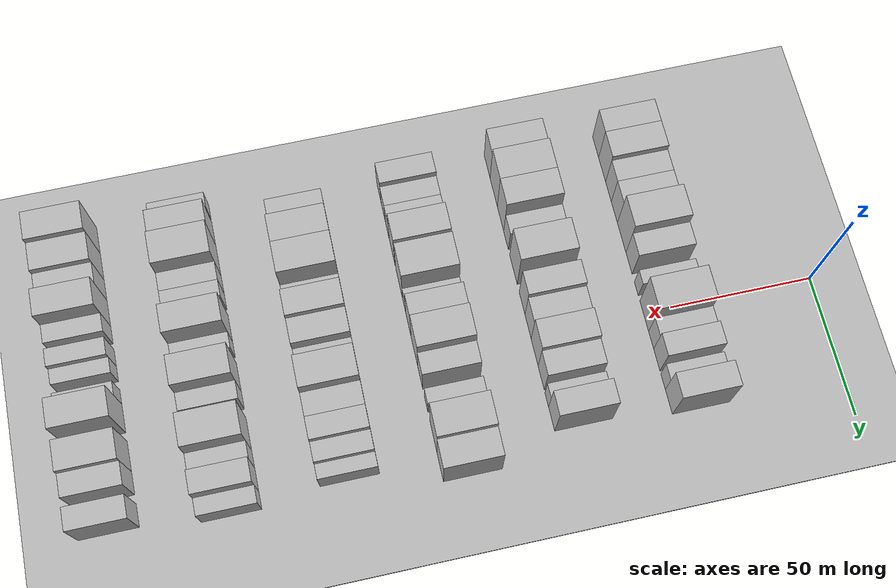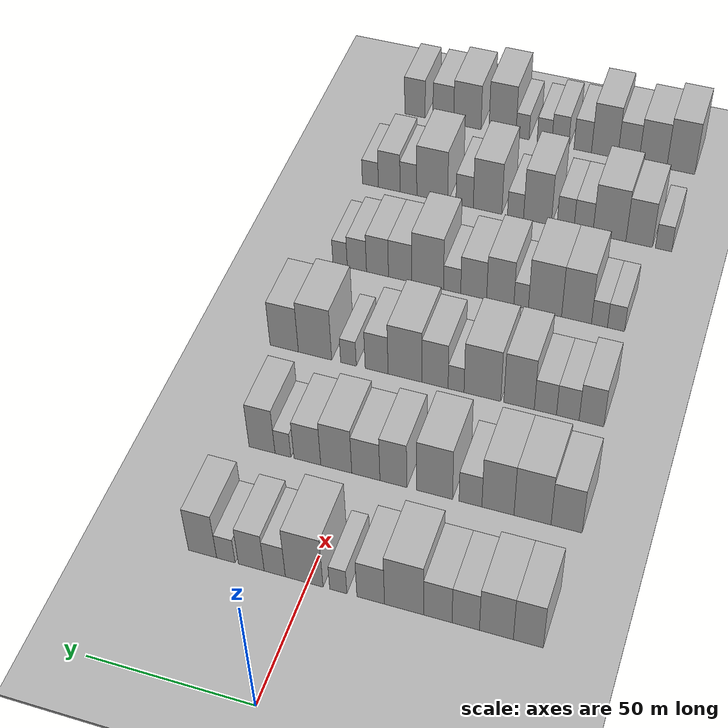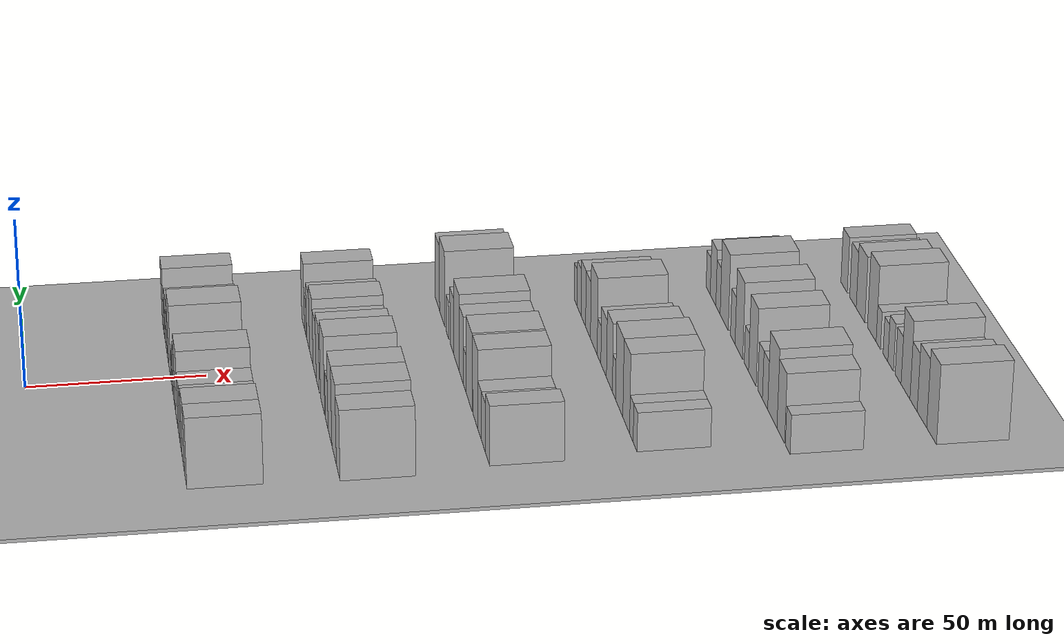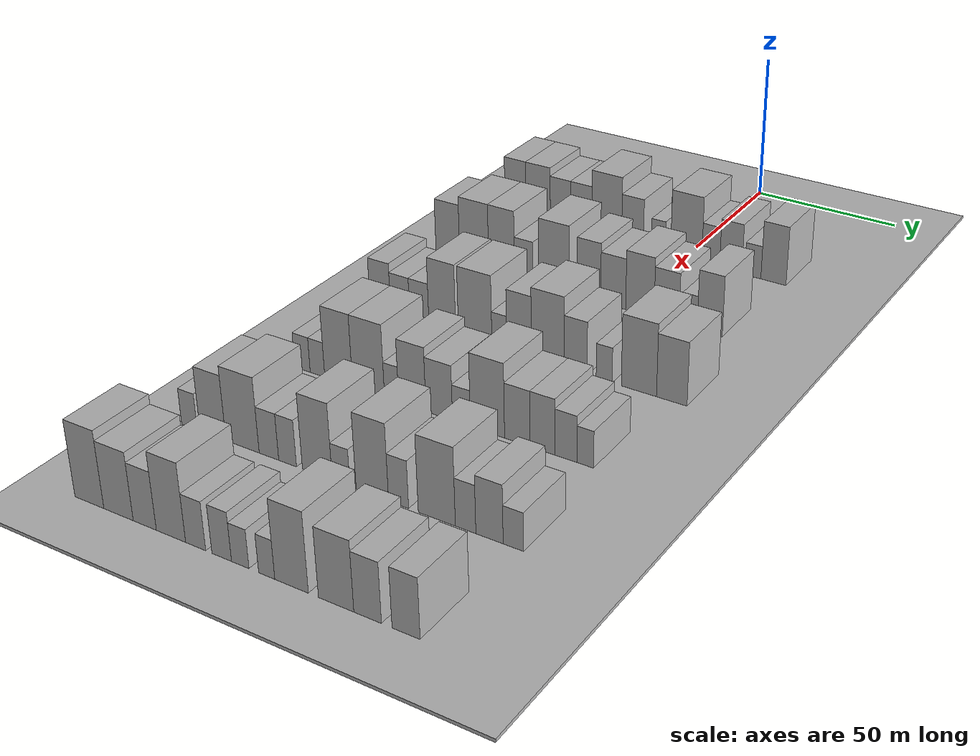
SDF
<sdf version="1.6">
 <world name="default">
  <include><name>ground_plane_1</name><uri>model://HANNAS_ground_plane</uri></include>
  <include>
   <name>ground_plane_2</name>
   <uri>model://HANNAS_ground_plane</uri>
   <pose>100 0 0  0 0 0</pose>
  </include>
  <model name="building_61">
   <static>1</static>
   <pose>50.0000 -64.9273 0 0.000000 0.000000 0.000000</pose>
   <link name="link">
    <pose>0 0 10.50 0 0 0</pose>
    <collision name="collision"><geometry><box><size>20.0000 8.5586 21.0000</size></box></geometry></collision>
    <visual name="visual">
     <cast_shadows>0</cast_shadows>
     <geometry><box><size>20.0000 8.5586 21.0000</size></box></geometry>
     <material>
      <script>
       <uri>model://HANNAS_wall/materials/scripts</uri>
       <uri>model://HANNAS_wall/materials/textures</uri>
       <name>vrc/HANNAS_wall</name>
      </script>
     </material>
    </visual>
   </link>
  </model>
  <model name="building_62">
   <static>1</static>
   <pose>50.0000 -55.7597 0 0.000000 0.000000 0.000000</pose>
   <link name="link">
    <pose>0 0 10.50 0 0 0</pose>
    <collision name="collision"><geometry><box><size>20.0000 9.7767 21.0000</size></box></geometry></collision>
    <visual name="visual">
     <cast_shadows>0</cast_shadows>
     <geometry><box><size>20.0000 9.7767 21.0000</size></box></geometry>
     <material>
      <script>
       <uri>model://HANNAS_wall/materials/scripts</uri>
       <uri>model://HANNAS_wall/materials/textures</uri>
       <name>vrc/HANNAS_wall</name>
      </script>
     </material>
    </visual>
   </link>
  </model>
  <model name="building_63">
   <static>1</static>
   <pose>50.0000 -46.8969 0 0.000000 0.000000 0.000000</pose>
   <link name="link">
    <pose>0 0 9.00 0 0 0</pose>
    <collision name="collision"><geometry><box><size>20.0000 7.9490 18.0000</size></box></geometry></collision>
    <visual name="visual">
     <cast_shadows>0</cast_shadows>
     <geometry><box><size>20.0000 7.9490 18.0000</size></box></geometry>
     <material>
      <script>
       <uri>model://HANNAS_wall/materials/scripts</uri>
       <uri>model://HANNAS_wall/materials/textures</uri>
       <name>vrc/HANNAS_wall</name>
      </script>
     </material>
    </visual>
   </link>
  </model>
  <model name="building_64">
   <static>1</static>
   <pose>50.0000 -38.7612 0 0.000000 0.000000 0.000000</pose>
   <link name="link">
    <pose>0 0 9.00 0 0 0</pose>
    <collision name="collision"><geometry><box><size>20.0000 8.3224 18.0000</size></box></geometry></collision>
    <visual name="visual">
     <cast_shadows>0</cast_shadows>
     <geometry><box><size>20.0000 8.3224 18.0000</size></box></geometry>
     <material>
      <script>
       <uri>model://HANNAS_wall/materials/scripts</uri>
       <uri>model://HANNAS_wall/materials/textures</uri>
       <name>vrc/HANNAS_wall</name>
      </script>
     </material>
    </visual>
   </link>
  </model>
  <model name="building_65">
   <static>1</static>
   <pose>50.0000 -28.8461 0 0.000000 0.000000 0.000000</pose>
   <link name="link">
    <pose>0 0 12.00 0 0 0</pose>
    <collision name="collision"><geometry><box><size>20.0000 11.5079 24.0000</size></box></geometry></collision>
    <visual name="visual">
     <cast_shadows>0</cast_shadows>
     <geometry><box><size>20.0000 11.5079 24.0000</size></box></geometry>
     <material>
      <script>
       <uri>model://HANNAS_wall/materials/scripts</uri>
       <uri>model://HANNAS_wall/materials/textures</uri>
       <name>vrc/HANNAS_wall</name>
      </script>
     </material>
    </visual>
   </link>
  </model>
  <model name="building_66">
   <static>1</static>
   <pose>50.0000 -18.9739 0 0.000000 0.000000 0.000000</pose>
   <link name="link">
    <pose>0 0 9.00 0 0 0</pose>
    <collision name="collision"><geometry><box><size>20.0000 8.2365 18.0000</size></box></geometry></collision>
    <visual name="visual">
     <cast_shadows>0</cast_shadows>
     <geometry><box><size>20.0000 8.2365 18.0000</size></box></geometry>
     <material>
      <script>
       <uri>model://HANNAS_wall/materials/scripts</uri>
       <uri>model://HANNAS_wall/materials/textures</uri>
       <name>vrc/HANNAS_wall</name>
      </script>
     </material>
    </visual>
   </link>
  </model>
  <model name="building_67">
   <static>1</static>
   <pose>50.0000 -9.2763 0 0.000000 0.000000 0.000000</pose>
   <link name="link">
    <pose>0 0 6.00 0 0 0</pose>
    <collision name="collision"><geometry><box><size>20.0000 5.1587 12.0000</size></box></geometry></collision>
    <visual name="visual">
     <cast_shadows>0</cast_shadows>
     <geometry><box><size>20.0000 5.1587 12.0000</size></box></geometry>
     <material>
      <script>
       <uri>model://HANNAS_wall/materials/scripts</uri>
       <uri>model://HANNAS_wall/materials/textures</uri>
       <name>vrc/HANNAS_wall</name>
      </script>
     </material>
    </visual>
   </link>
  </model>
  <model name="building_68">
   <static>1</static>
   <pose>50.0000 1.0215 0 0.000000 0.000000 0.000000</pose>
   <link name="link">
    <pose>0 0 12.00 0 0 0</pose>
    <collision name="collision"><geometry><box><size>20.0000 11.4368 24.0000</size></box></geometry></collision>
    <visual name="visual">
     <cast_shadows>0</cast_shadows>
     <geometry><box><size>20.0000 11.4368 24.0000</size></box></geometry>
     <material>
      <script>
       <uri>model://HANNAS_wall/materials/scripts</uri>
       <uri>model://HANNAS_wall/materials/textures</uri>
       <name>vrc/HANNAS_wall</name>
      </script>
     </material>
    </visual>
   </link>
  </model>
  <model name="building_69">
   <static>1</static>
   <pose>50.0000 9.9704 0 0.000000 0.000000 0.000000</pose>
   <link name="link">
    <pose>0 0 7.50 0 0 0</pose>
    <collision name="collision"><geometry><box><size>20.0000 6.4611 15.0000</size></box></geometry></collision>
    <visual name="visual">
     <cast_shadows>0</cast_shadows>
     <geometry><box><size>20.0000 6.4611 15.0000</size></box></geometry>
     <material>
      <script>
       <uri>model://HANNAS_wall/materials/scripts</uri>
       <uri>model://HANNAS_wall/materials/textures</uri>
       <name>vrc/HANNAS_wall</name>
      </script>
     </material>
    </visual>
   </link>
  </model>
  <model name="building_70">
   <static>1</static>
   <pose>50.0000 17.1751 0 0.000000 0.000000 0.000000</pose>
   <link name="link">
    <pose>0 0 9.00 0 0 0</pose>
    <collision name="collision"><geometry><box><size>20.0000 7.9483 18.0000</size></box></geometry></collision>
    <visual name="visual">
     <cast_shadows>0</cast_shadows>
     <geometry><box><size>20.0000 7.9483 18.0000</size></box></geometry>
     <material>
      <script>
       <uri>model://HANNAS_wall/materials/scripts</uri>
       <uri>model://HANNAS_wall/materials/textures</uri>
       <name>vrc/HANNAS_wall</name>
      </script>
     </material>
    </visual>
   </link>
  </model>
  <model name="building_71">
   <static>1</static>
   <pose>50.0000 25.0140 0 0.000000 0.000000 0.000000</pose>
   <link name="link">
    <pose>0 0 6.00 0 0 0</pose>
    <collision name="collision"><geometry><box><size>20.0000 5.7295 12.0000</size></box></geometry></collision>
    <visual name="visual">
     <cast_shadows>0</cast_shadows>
     <geometry><box><size>20.0000 5.7295 12.0000</size></box></geometry>
     <material>
      <script>
       <uri>model://HANNAS_wall/materials/scripts</uri>
       <uri>model://HANNAS_wall/materials/textures</uri>
       <name>vrc/HANNAS_wall</name>
      </script>
     </material>
    </visual>
   </link>
  </model>
  <model name="building_72">
   <static>1</static>
   <pose>50.0000 32.2604 0 0.000000 0.000000 0.000000</pose>
   <link name="link">
    <pose>0 0 10.50 0 0 0</pose>
    <collision name="collision"><geometry><box><size>20.0000 8.7634 21.0000</size></box></geometry></collision>
    <visual name="visual">
     <cast_shadows>0</cast_shadows>
     <geometry><box><size>20.0000 8.7634 21.0000</size></box></geometry>
     <material>
      <script>
       <uri>model://HANNAS_wall/materials/scripts</uri>
       <uri>model://HANNAS_wall/materials/textures</uri>
       <name>vrc/HANNAS_wall</name>
      </script>
     </material>
    </visual>
   </link>
  </model>
  <model name="building_191">
   <static>1</static>
   <pose>90.0000 -65.7509 0 0.000000 0.000000 0.000000</pose>
   <link name="link">
    <pose>0 0 10.50 0 0 0</pose>
    <collision name="collision"><geometry><box><size>20.0000 9.3643 21.0000</size></box></geometry></collision>
    <visual name="visual">
     <cast_shadows>0</cast_shadows>
     <geometry><box><size>20.0000 9.3643 21.0000</size></box></geometry>
     <material>
      <script>
       <uri>model://HANNAS_wall/materials/scripts</uri>
       <uri>model://HANNAS_wall/materials/textures</uri>
       <name>vrc/HANNAS_wall</name>
      </script>
     </material>
    </visual>
   </link>
  </model>
  <model name="building_192">
   <static>1</static>
   <pose>90.0000 -55.4507 0 0.000000 0.000000 0.000000</pose>
   <link name="link">
    <pose>0 0 12.00 0 0 0</pose>
    <collision name="collision"><geometry><box><size>20.0000 11.2360 24.0000</size></box></geometry></collision>
    <visual name="visual">
     <cast_shadows>0</cast_shadows>
     <geometry><box><size>20.0000 11.2360 24.0000</size></box></geometry>
     <material>
      <script>
       <uri>model://HANNAS_wall/materials/scripts</uri>
       <uri>model://HANNAS_wall/materials/textures</uri>
       <name>vrc/HANNAS_wall</name>
      </script>
     </material>
    </visual>
   </link>
  </model>
  <model name="building_193">
   <static>1</static>
   <pose>90.0000 -44.9226 0 0.000000 0.000000 0.000000</pose>
   <link name="link">
    <pose>0 0 12.00 0 0 0</pose>
    <collision name="collision"><geometry><box><size>20.0000 9.8203 24.0000</size></box></geometry></collision>
    <visual name="visual">
     <cast_shadows>0</cast_shadows>
     <geometry><box><size>20.0000 9.8203 24.0000</size></box></geometry>
     <material>
      <script>
       <uri>model://HANNAS_wall/materials/scripts</uri>
       <uri>model://HANNAS_wall/materials/textures</uri>
       <name>vrc/HANNAS_wall</name>
      </script>
     </material>
    </visual>
   </link>
  </model>
  <model name="building_194">
   <static>1</static>
   <pose>90.0000 -36.4990 0 0.000000 0.000000 0.000000</pose>
   <link name="link">
    <pose>0 0 7.50 0 0 0</pose>
    <collision name="collision"><geometry><box><size>20.0000 7.0270 15.0000</size></box></geometry></collision>
    <visual name="visual">
     <cast_shadows>0</cast_shadows>
     <geometry><box><size>20.0000 7.0270 15.0000</size></box></geometry>
     <material>
      <script>
       <uri>model://HANNAS_wall/materials/scripts</uri>
       <uri>model://HANNAS_wall/materials/textures</uri>
       <name>vrc/HANNAS_wall</name>
      </script>
     </material>
    </visual>
   </link>
  </model>
  <model name="building_195">
   <static>1</static>
   <pose>90.0000 -25.3706 0 0.000000 0.000000 0.000000</pose>
   <link name="link">
    <pose>0 0 12.00 0 0 0</pose>
    <collision name="collision"><geometry><box><size>20.0000 11.2297 24.0000</size></box></geometry></collision>
    <visual name="visual">
     <cast_shadows>0</cast_shadows>
     <geometry><box><size>20.0000 11.2297 24.0000</size></box></geometry>
     <material>
      <script>
       <uri>model://HANNAS_wall/materials/scripts</uri>
       <uri>model://HANNAS_wall/materials/textures</uri>
       <name>vrc/HANNAS_wall</name>
      </script>
     </material>
    </visual>
   </link>
  </model>
  <model name="building_196">
   <static>1</static>
   <pose>90.0000 -12.5158 0 0.000000 0.000000 0.000000</pose>
   <link name="link">
    <pose>0 0 10.50 0 0 0</pose>
    <collision name="collision"><geometry><box><size>20.0000 8.4800 21.0000</size></box></geometry></collision>
    <visual name="visual">
     <cast_shadows>0</cast_shadows>
     <geometry><box><size>20.0000 8.4800 21.0000</size></box></geometry>
     <material>
      <script>
       <uri>model://HANNAS_wall/materials/scripts</uri>
       <uri>model://HANNAS_wall/materials/textures</uri>
       <name>vrc/HANNAS_wall</name>
      </script>
     </material>
    </visual>
   </link>
  </model>
  <model name="building_197">
   <static>1</static>
   <pose>90.0000 -3.8164 0 0.000000 0.000000 0.000000</pose>
   <link name="link">
    <pose>0 0 9.00 0 0 0</pose>
    <collision name="collision"><geometry><box><size>20.0000 8.9188 18.0000</size></box></geometry></collision>
    <visual name="visual">
     <cast_shadows>0</cast_shadows>
     <geometry><box><size>20.0000 8.9188 18.0000</size></box></geometry>
     <material>
      <script>
       <uri>model://HANNAS_wall/materials/scripts</uri>
       <uri>model://HANNAS_wall/materials/textures</uri>
       <name>vrc/HANNAS_wall</name>
      </script>
     </material>
    </visual>
   </link>
  </model>
  <model name="building_198">
   <static>1</static>
   <pose>90.0000 5.6031 0 0.000000 0.000000 0.000000</pose>
   <link name="link">
    <pose>0 0 10.50 0 0 0</pose>
    <collision name="collision"><geometry><box><size>20.0000 9.9201 21.0000</size></box></geometry></collision>
    <visual name="visual">
     <cast_shadows>0</cast_shadows>
     <geometry><box><size>20.0000 9.9201 21.0000</size></box></geometry>
     <material>
      <script>
       <uri>model://HANNAS_wall/materials/scripts</uri>
       <uri>model://HANNAS_wall/materials/textures</uri>
       <name>vrc/HANNAS_wall</name>
      </script>
     </material>
    </visual>
   </link>
  </model>
  <model name="building_199">
   <static>1</static>
   <pose>90.0000 14.8822 0 0.000000 0.000000 0.000000</pose>
   <link name="link">
    <pose>0 0 9.00 0 0 0</pose>
    <collision name="collision"><geometry><box><size>20.0000 8.6382 18.0000</size></box></geometry></collision>
    <visual name="visual">
     <cast_shadows>0</cast_shadows>
     <geometry><box><size>20.0000 8.6382 18.0000</size></box></geometry>
     <material>
      <script>
       <uri>model://HANNAS_wall/materials/scripts</uri>
       <uri>model://HANNAS_wall/materials/textures</uri>
       <name>vrc/HANNAS_wall</name>
      </script>
     </material>
    </visual>
   </link>
  </model>
  <model name="building_200">
   <static>1</static>
   <pose>90.0000 22.7704 0 0.000000 0.000000 0.000000</pose>
   <link name="link">
    <pose>0 0 6.00 0 0 0</pose>
    <collision name="collision"><geometry><box><size>20.0000 5.1382 12.0000</size></box></geometry></collision>
    <visual name="visual">
     <cast_shadows>0</cast_shadows>
     <geometry><box><size>20.0000 5.1382 12.0000</size></box></geometry>
     <material>
      <script>
       <uri>model://HANNAS_wall/materials/scripts</uri>
       <uri>model://HANNAS_wall/materials/textures</uri>
       <name>vrc/HANNAS_wall</name>
      </script>
     </material>
    </visual>
   </link>
  </model>
  <model name="building_201">
   <static>1</static>
   <pose>90.0000 29.5602 0 0.000000 0.000000 0.000000</pose>
   <link name="link">
    <pose>0 0 10.50 0 0 0</pose>
    <collision name="collision"><geometry><box><size>20.0000 8.4414 21.0000</size></box></geometry></collision>
    <visual name="visual">
     <cast_shadows>0</cast_shadows>
     <geometry><box><size>20.0000 8.4414 21.0000</size></box></geometry>
     <material>
      <script>
       <uri>model://HANNAS_wall/materials/scripts</uri>
       <uri>model://HANNAS_wall/materials/textures</uri>
       <name>vrc/HANNAS_wall</name>
      </script>
     </material>
    </visual>
   </link>
  </model>
  <model name="building_325">
   <static>1</static>
   <pose>130.0000 -63.6179 0 0.000000 0.000000 0.000000</pose>
   <link name="link">
    <pose>0 0 9.00 0 0 0</pose>
    <collision name="collision"><geometry><box><size>20.0000 7.8338 18.0000</size></box></geometry></collision>
    <visual name="visual">
     <cast_shadows>0</cast_shadows>
     <geometry><box><size>20.0000 7.8338 18.0000</size></box></geometry>
     <material>
      <script>
       <uri>model://HANNAS_wall/materials/scripts</uri>
       <uri>model://HANNAS_wall/materials/textures</uri>
       <name>vrc/HANNAS_wall</name>
      </script>
     </material>
    </visual>
   </link>
  </model>
  <model name="building_326">
   <static>1</static>
   <pose>130.0000 -56.1013 0 0.000000 0.000000 0.000000</pose>
   <link name="link">
    <pose>0 0 7.50 0 0 0</pose>
    <collision name="collision"><geometry><box><size>20.0000 7.1995 15.0000</size></box></geometry></collision>
    <visual name="visual">
     <cast_shadows>0</cast_shadows>
     <geometry><box><size>20.0000 7.1995 15.0000</size></box></geometry>
     <material>
      <script>
       <uri>model://HANNAS_wall/materials/scripts</uri>
       <uri>model://HANNAS_wall/materials/textures</uri>
       <name>vrc/HANNAS_wall</name>
      </script>
     </material>
    </visual>
   </link>
  </model>
  <model name="building_327">
   <static>1</static>
   <pose>130.0000 -48.9469 0 0.000000 0.000000 0.000000</pose>
   <link name="link">
    <pose>0 0 7.50 0 0 0</pose>
    <collision name="collision"><geometry><box><size>20.0000 7.1093 15.0000</size></box></geometry></collision>
    <visual name="visual">
     <cast_shadows>0</cast_shadows>
     <geometry><box><size>20.0000 7.1093 15.0000</size></box></geometry>
     <material>
      <script>
       <uri>model://HANNAS_wall/materials/scripts</uri>
       <uri>model://HANNAS_wall/materials/textures</uri>
       <name>vrc/HANNAS_wall</name>
      </script>
     </material>
    </visual>
   </link>
  </model>
  <model name="building_328">
   <static>1</static>
   <pose>130.0000 -40.4808 0 0.000000 0.000000 0.000000</pose>
   <link name="link">
    <pose>0 0 12.00 0 0 0</pose>
    <collision name="collision"><geometry><box><size>20.0000 9.8229 24.0000</size></box></geometry></collision>
    <visual name="visual">
     <cast_shadows>0</cast_shadows>
     <geometry><box><size>20.0000 9.8229 24.0000</size></box></geometry>
     <material>
      <script>
       <uri>model://HANNAS_wall/materials/scripts</uri>
       <uri>model://HANNAS_wall/materials/textures</uri>
       <name>vrc/HANNAS_wall</name>
      </script>
     </material>
    </visual>
   </link>
  </model>
  <model name="building_329">
   <static>1</static>
   <pose>130.0000 -28.5945 0 0.000000 0.000000 0.000000</pose>
   <link name="link">
    <pose>0 0 12.00 0 0 0</pose>
    <collision name="collision"><geometry><box><size>20.0000 11.9497 24.0000</size></box></geometry></collision>
    <visual name="visual">
     <cast_shadows>0</cast_shadows>
     <geometry><box><size>20.0000 11.9497 24.0000</size></box></geometry>
     <material>
      <script>
       <uri>model://HANNAS_wall/materials/scripts</uri>
       <uri>model://HANNAS_wall/materials/textures</uri>
       <name>vrc/HANNAS_wall</name>
      </script>
     </material>
    </visual>
   </link>
  </model>
  <model name="building_330">
   <static>1</static>
   <pose>130.0000 -20.0127 0 0.000000 0.000000 0.000000</pose>
   <link name="link">
    <pose>0 0 6.00 0 0 0</pose>
    <collision name="collision"><geometry><box><size>20.0000 5.2139 12.0000</size></box></geometry></collision>
    <visual name="visual">
     <cast_shadows>0</cast_shadows>
     <geometry><box><size>20.0000 5.2139 12.0000</size></box></geometry>
     <material>
      <script>
       <uri>model://HANNAS_wall/materials/scripts</uri>
       <uri>model://HANNAS_wall/materials/textures</uri>
       <name>vrc/HANNAS_wall</name>
      </script>
     </material>
    </visual>
   </link>
  </model>
  <model name="building_331">
   <static>1</static>
   <pose>130.0000 -13.1106 0 0.000000 0.000000 0.000000</pose>
   <link name="link">
    <pose>0 0 10.50 0 0 0</pose>
    <collision name="collision"><geometry><box><size>20.0000 8.5901 21.0000</size></box></geometry></collision>
    <visual name="visual">
     <cast_shadows>0</cast_shadows>
     <geometry><box><size>20.0000 8.5901 21.0000</size></box></geometry>
     <material>
      <script>
       <uri>model://HANNAS_wall/materials/scripts</uri>
       <uri>model://HANNAS_wall/materials/textures</uri>
       <name>vrc/HANNAS_wall</name>
      </script>
     </material>
    </visual>
   </link>
  </model>
  <model name="building_332">
   <static>1</static>
   <pose>130.0000 -3.1875 0 0.000000 0.000000 0.000000</pose>
   <link name="link">
    <pose>0 0 12.00 0 0 0</pose>
    <collision name="collision"><geometry><box><size>20.0000 11.2561 24.0000</size></box></geometry></collision>
    <visual name="visual">
     <cast_shadows>0</cast_shadows>
     <geometry><box><size>20.0000 11.2561 24.0000</size></box></geometry>
     <material>
      <script>
       <uri>model://HANNAS_wall/materials/scripts</uri>
       <uri>model://HANNAS_wall/materials/textures</uri>
       <name>vrc/HANNAS_wall</name>
      </script>
     </material>
    </visual>
   </link>
  </model>
  <model name="building_333">
   <static>1</static>
   <pose>130.0000 6.2806 0 0.000000 0.000000 0.000000</pose>
   <link name="link">
    <pose>0 0 9.00 0 0 0</pose>
    <collision name="collision"><geometry><box><size>20.0000 7.6801 18.0000</size></box></geometry></collision>
    <visual name="visual">
     <cast_shadows>0</cast_shadows>
     <geometry><box><size>20.0000 7.6801 18.0000</size></box></geometry>
     <material>
      <script>
       <uri>model://HANNAS_wall/materials/scripts</uri>
       <uri>model://HANNAS_wall/materials/textures</uri>
       <name>vrc/HANNAS_wall</name>
      </script>
     </material>
    </visual>
   </link>
  </model>
  <model name="building_334">
   <static>1</static>
   <pose>130.0000 15.7661 0 0.000000 0.000000 0.000000</pose>
   <link name="link">
    <pose>0 0 6.00 0 0 0</pose>
    <collision name="collision"><geometry><box><size>20.0000 5.2908 12.0000</size></box></geometry></collision>
    <visual name="visual">
     <cast_shadows>0</cast_shadows>
     <geometry><box><size>20.0000 5.2908 12.0000</size></box></geometry>
     <material>
      <script>
       <uri>model://HANNAS_wall/materials/scripts</uri>
       <uri>model://HANNAS_wall/materials/textures</uri>
       <name>vrc/HANNAS_wall</name>
      </script>
     </material>
    </visual>
   </link>
  </model>
  <model name="building_335">
   <static>1</static>
   <pose>130.0000 27.0933 0 0.000000 0.000000 0.000000</pose>
   <link name="link">
    <pose>0 0 12.00 0 0 0</pose>
    <collision name="collision"><geometry><box><size>20.0000 11.3637 24.0000</size></box></geometry></collision>
    <visual name="visual">
     <cast_shadows>0</cast_shadows>
     <geometry><box><size>20.0000 11.3637 24.0000</size></box></geometry>
     <material>
      <script>
       <uri>model://HANNAS_wall/materials/scripts</uri>
       <uri>model://HANNAS_wall/materials/textures</uri>
       <name>vrc/HANNAS_wall</name>
      </script>
     </material>
    </visual>
   </link>
  </model>
  <model name="building_336">
   <static>1</static>
   <pose>130.0000 37.6231 0 0.000000 0.000000 0.000000</pose>
   <link name="link">
    <pose>0 0 10.50 0 0 0</pose>
    <collision name="collision"><geometry><box><size>20.0000 9.6959 21.0000</size></box></geometry></collision>
    <visual name="visual">
     <cast_shadows>0</cast_shadows>
     <geometry><box><size>20.0000 9.6959 21.0000</size></box></geometry>
     <material>
      <script>
       <uri>model://HANNAS_wall/materials/scripts</uri>
       <uri>model://HANNAS_wall/materials/textures</uri>
       <name>vrc/HANNAS_wall</name>
      </script>
     </material>
    </visual>
   </link>
  </model>
  <model name="building_458">
   <static>1</static>
   <pose>170.0000 -62.1815 0 0.000000 0.000000 0.000000</pose>
   <link name="link">
    <pose>0 0 6.00 0 0 0</pose>
    <collision name="collision"><geometry><box><size>20.0000 5.6823 12.0000</size></box></geometry></collision>
    <visual name="visual">
     <cast_shadows>0</cast_shadows>
     <geometry><box><size>20.0000 5.6823 12.0000</size></box></geometry>
     <material>
      <script>
       <uri>model://HANNAS_wall/materials/scripts</uri>
       <uri>model://HANNAS_wall/materials/textures</uri>
       <name>vrc/HANNAS_wall</name>
      </script>
     </material>
    </visual>
   </link>
  </model>
  <model name="building_459">
   <static>1</static>
   <pose>170.0000 -56.6840 0 0.000000 0.000000 0.000000</pose>
   <link name="link">
    <pose>0 0 6.00 0 0 0</pose>
    <collision name="collision"><geometry><box><size>20.0000 5.3128 12.0000</size></box></geometry></collision>
    <visual name="visual">
     <cast_shadows>0</cast_shadows>
     <geometry><box><size>20.0000 5.3128 12.0000</size></box></geometry>
     <material>
      <script>
       <uri>model://HANNAS_wall/materials/scripts</uri>
       <uri>model://HANNAS_wall/materials/textures</uri>
       <name>vrc/HANNAS_wall</name>
      </script>
     </material>
    </visual>
   </link>
  </model>
  <model name="building_460">
   <static>1</static>
   <pose>170.0000 -49.0095 0 0.000000 0.000000 0.000000</pose>
   <link name="link">
    <pose>0 0 12.00 0 0 0</pose>
    <collision name="collision"><geometry><box><size>20.0000 10.0363 24.0000</size></box></geometry></collision>
    <visual name="visual">
     <cast_shadows>0</cast_shadows>
     <geometry><box><size>20.0000 10.0363 24.0000</size></box></geometry>
     <material>
      <script>
       <uri>model://HANNAS_wall/materials/scripts</uri>
       <uri>model://HANNAS_wall/materials/textures</uri>
       <name>vrc/HANNAS_wall</name>
      </script>
     </material>
    </visual>
   </link>
  </model>
  <model name="building_461">
   <static>1</static>
   <pose>170.0000 -38.3760 0 0.000000 0.000000 0.000000</pose>
   <link name="link">
    <pose>0 0 12.00 0 0 0</pose>
    <collision name="collision"><geometry><box><size>20.0000 11.2307 24.0000</size></box></geometry></collision>
    <visual name="visual">
     <cast_shadows>0</cast_shadows>
     <geometry><box><size>20.0000 11.2307 24.0000</size></box></geometry>
     <material>
      <script>
       <uri>model://HANNAS_wall/materials/scripts</uri>
       <uri>model://HANNAS_wall/materials/textures</uri>
       <name>vrc/HANNAS_wall</name>
      </script>
     </material>
    </visual>
   </link>
  </model>
  <model name="building_462">
   <static>1</static>
   <pose>170.0000 -30.2959 0 0.000000 0.000000 0.000000</pose>
   <link name="link">
    <pose>0 0 6.00 0 0 0</pose>
    <collision name="collision"><geometry><box><size>20.0000 4.9296 12.0000</size></box></geometry></collision>
    <visual name="visual">
     <cast_shadows>0</cast_shadows>
     <geometry><box><size>20.0000 4.9296 12.0000</size></box></geometry>
     <material>
      <script>
       <uri>model://HANNAS_wall/materials/scripts</uri>
       <uri>model://HANNAS_wall/materials/textures</uri>
       <name>vrc/HANNAS_wall</name>
      </script>
     </material>
    </visual>
   </link>
  </model>
  <model name="building_463">
   <static>1</static>
   <pose>170.0000 -23.1689 0 0.000000 0.000000 0.000000</pose>
   <link name="link">
    <pose>0 0 10.50 0 0 0</pose>
    <collision name="collision"><geometry><box><size>20.0000 9.3243 21.0000</size></box></geometry></collision>
    <visual name="visual">
     <cast_shadows>0</cast_shadows>
     <geometry><box><size>20.0000 9.3243 21.0000</size></box></geometry>
     <material>
      <script>
       <uri>model://HANNAS_wall/materials/scripts</uri>
       <uri>model://HANNAS_wall/materials/textures</uri>
       <name>vrc/HANNAS_wall</name>
      </script>
     </material>
    </visual>
   </link>
  </model>
  <model name="building_464">
   <static>1</static>
   <pose>170.0000 -14.0458 0 0.000000 0.000000 0.000000</pose>
   <link name="link">
    <pose>0 0 9.00 0 0 0</pose>
    <collision name="collision"><geometry><box><size>20.0000 8.9219 18.0000</size></box></geometry></collision>
    <visual name="visual">
     <cast_shadows>0</cast_shadows>
     <geometry><box><size>20.0000 8.9219 18.0000</size></box></geometry>
     <material>
      <script>
       <uri>model://HANNAS_wall/materials/scripts</uri>
       <uri>model://HANNAS_wall/materials/textures</uri>
       <name>vrc/HANNAS_wall</name>
      </script>
     </material>
    </visual>
   </link>
  </model>
  <model name="building_465">
   <static>1</static>
   <pose>170.0000 -6.6154 0 0.000000 0.000000 0.000000</pose>
   <link name="link">
    <pose>0 0 6.00 0 0 0</pose>
    <collision name="collision"><geometry><box><size>20.0000 5.9389 12.0000</size></box></geometry></collision>
    <visual name="visual">
     <cast_shadows>0</cast_shadows>
     <geometry><box><size>20.0000 5.9389 12.0000</size></box></geometry>
     <material>
      <script>
       <uri>model://HANNAS_wall/materials/scripts</uri>
       <uri>model://HANNAS_wall/materials/textures</uri>
       <name>vrc/HANNAS_wall</name>
      </script>
     </material>
    </visual>
   </link>
  </model>
  <model name="building_466">
   <static>1</static>
   <pose>170.0000 1.9066 0 0.000000 0.000000 0.000000</pose>
   <link name="link">
    <pose>0 0 12.00 0 0 0</pose>
    <collision name="collision"><geometry><box><size>20.0000 11.1051 24.0000</size></box></geometry></collision>
    <visual name="visual">
     <cast_shadows>0</cast_shadows>
     <geometry><box><size>20.0000 11.1051 24.0000</size></box></geometry>
     <material>
      <script>
       <uri>model://HANNAS_wall/materials/scripts</uri>
       <uri>model://HANNAS_wall/materials/textures</uri>
       <name>vrc/HANNAS_wall</name>
      </script>
     </material>
    </visual>
   </link>
  </model>
  <model name="building_467">
   <static>1</static>
   <pose>170.0000 11.5377 0 0.000000 0.000000 0.000000</pose>
   <link name="link">
    <pose>0 0 9.00 0 0 0</pose>
    <collision name="collision"><geometry><box><size>20.0000 8.1571 18.0000</size></box></geometry></collision>
    <visual name="visual">
     <cast_shadows>0</cast_shadows>
     <geometry><box><size>20.0000 8.1571 18.0000</size></box></geometry>
     <material>
      <script>
       <uri>model://HANNAS_wall/materials/scripts</uri>
       <uri>model://HANNAS_wall/materials/textures</uri>
       <name>vrc/HANNAS_wall</name>
      </script>
     </material>
    </visual>
   </link>
  </model>
  <model name="building_468">
   <static>1</static>
   <pose>170.0000 19.5085 0 0.000000 0.000000 0.000000</pose>
   <link name="link">
    <pose>0 0 9.00 0 0 0</pose>
    <collision name="collision"><geometry><box><size>20.0000 7.7844 18.0000</size></box></geometry></collision>
    <visual name="visual">
     <cast_shadows>0</cast_shadows>
     <geometry><box><size>20.0000 7.7844 18.0000</size></box></geometry>
     <material>
      <script>
       <uri>model://HANNAS_wall/materials/scripts</uri>
       <uri>model://HANNAS_wall/materials/textures</uri>
       <name>vrc/HANNAS_wall</name>
      </script>
     </material>
    </visual>
   </link>
  </model>
  <model name="building_469">
   <static>1</static>
   <pose>170.0000 26.8106 0 0.000000 0.000000 0.000000</pose>
   <link name="link">
    <pose>0 0 7.50 0 0 0</pose>
    <collision name="collision"><geometry><box><size>20.0000 6.8199 15.0000</size></box></geometry></collision>
    <visual name="visual">
     <cast_shadows>0</cast_shadows>
     <geometry><box><size>20.0000 6.8199 15.0000</size></box></geometry>
     <material>
      <script>
       <uri>model://HANNAS_wall/materials/scripts</uri>
       <uri>model://HANNAS_wall/materials/textures</uri>
       <name>vrc/HANNAS_wall</name>
      </script>
     </material>
    </visual>
   </link>
  </model>
  <model name="building_470">
   <static>1</static>
   <pose>170.0000 32.7823 0 0.000000 0.000000 0.000000</pose>
   <link name="link">
    <pose>0 0 6.00 0 0 0</pose>
    <collision name="collision"><geometry><box><size>20.0000 5.1237 12.0000</size></box></geometry></collision>
    <visual name="visual">
     <cast_shadows>0</cast_shadows>
     <geometry><box><size>20.0000 5.1237 12.0000</size></box></geometry>
     <material>
      <script>
       <uri>model://HANNAS_wall/materials/scripts</uri>
       <uri>model://HANNAS_wall/materials/textures</uri>
       <name>vrc/HANNAS_wall</name>
      </script>
     </material>
    </visual>
   </link>
  </model>
  <model name="building_594">
   <static>1</static>
   <pose>210.0000 -69.5262 0 0.000000 0.000000 0.000000</pose>
   <link name="link">
    <pose>0 0 6.00 0 0 0</pose>
    <collision name="collision"><geometry><box><size>20.0000 5.6562 12.0000</size></box></geometry></collision>
    <visual name="visual">
     <cast_shadows>0</cast_shadows>
     <geometry><box><size>20.0000 5.6562 12.0000</size></box></geometry>
     <material>
      <script>
       <uri>model://HANNAS_wall/materials/scripts</uri>
       <uri>model://HANNAS_wall/materials/textures</uri>
       <name>vrc/HANNAS_wall</name>
      </script>
     </material>
    </visual>
   </link>
  </model>
  <model name="building_595">
   <static>1</static>
   <pose>210.0000 -61.0872 0 0.000000 0.000000 0.000000</pose>
   <link name="link">
    <pose>0 0 10.50 0 0 0</pose>
    <collision name="collision"><geometry><box><size>20.0000 9.2216 21.0000</size></box></geometry></collision>
    <visual name="visual">
     <cast_shadows>0</cast_shadows>
     <geometry><box><size>20.0000 9.2216 21.0000</size></box></geometry>
     <material>
      <script>
       <uri>model://HANNAS_wall/materials/scripts</uri>
       <uri>model://HANNAS_wall/materials/textures</uri>
       <name>vrc/HANNAS_wall</name>
      </script>
     </material>
    </visual>
   </link>
  </model>
  <model name="building_596">
   <static>1</static>
   <pose>210.0000 -50.6796 0 0.000000 0.000000 0.000000</pose>
   <link name="link">
    <pose>0 0 12.00 0 0 0</pose>
    <collision name="collision"><geometry><box><size>20.0000 11.5936 24.0000</size></box></geometry></collision>
    <visual name="visual">
     <cast_shadows>0</cast_shadows>
     <geometry><box><size>20.0000 11.5936 24.0000</size></box></geometry>
     <material>
      <script>
       <uri>model://HANNAS_wall/materials/scripts</uri>
       <uri>model://HANNAS_wall/materials/textures</uri>
       <name>vrc/HANNAS_wall</name>
      </script>
     </material>
    </visual>
   </link>
  </model>
  <model name="building_597">
   <static>1</static>
   <pose>210.0000 -41.5425 0 0.000000 0.000000 0.000000</pose>
   <link name="link">
    <pose>0 0 7.50 0 0 0</pose>
    <collision name="collision"><geometry><box><size>20.0000 6.6807 15.0000</size></box></geometry></collision>
    <visual name="visual">
     <cast_shadows>0</cast_shadows>
     <geometry><box><size>20.0000 6.6807 15.0000</size></box></geometry>
     <material>
      <script>
       <uri>model://HANNAS_wall/materials/scripts</uri>
       <uri>model://HANNAS_wall/materials/textures</uri>
       <name>vrc/HANNAS_wall</name>
      </script>
     </material>
    </visual>
   </link>
  </model>
  <model name="building_598">
   <static>1</static>
   <pose>210.0000 -35.1970 0 0.000000 0.000000 0.000000</pose>
   <link name="link">
    <pose>0 0 7.50 0 0 0</pose>
    <collision name="collision"><geometry><box><size>20.0000 6.0102 15.0000</size></box></geometry></collision>
    <visual name="visual">
     <cast_shadows>0</cast_shadows>
     <geometry><box><size>20.0000 6.0102 15.0000</size></box></geometry>
     <material>
      <script>
       <uri>model://HANNAS_wall/materials/scripts</uri>
       <uri>model://HANNAS_wall/materials/textures</uri>
       <name>vrc/HANNAS_wall</name>
      </script>
     </material>
    </visual>
   </link>
  </model>
  <model name="building_599">
   <static>1</static>
   <pose>210.0000 -25.2502 0 0.000000 0.000000 0.000000</pose>
   <link name="link">
    <pose>0 0 12.00 0 0 0</pose>
    <collision name="collision"><geometry><box><size>20.0000 9.8835 24.0000</size></box></geometry></collision>
    <visual name="visual">
     <cast_shadows>0</cast_shadows>
     <geometry><box><size>20.0000 9.8835 24.0000</size></box></geometry>
     <material>
      <script>
       <uri>model://HANNAS_wall/materials/scripts</uri>
       <uri>model://HANNAS_wall/materials/textures</uri>
       <name>vrc/HANNAS_wall</name>
      </script>
     </material>
    </visual>
   </link>
  </model>
  <model name="building_600">
   <static>1</static>
   <pose>210.0000 -17.4202 0 0.000000 0.000000 0.000000</pose>
   <link name="link">
    <pose>0 0 6.00 0 0 0</pose>
    <collision name="collision"><geometry><box><size>20.0000 5.7764 12.0000</size></box></geometry></collision>
    <visual name="visual">
     <cast_shadows>0</cast_shadows>
     <geometry><box><size>20.0000 5.7764 12.0000</size></box></geometry>
     <material>
      <script>
       <uri>model://HANNAS_wall/materials/scripts</uri>
       <uri>model://HANNAS_wall/materials/textures</uri>
       <name>vrc/HANNAS_wall</name>
      </script>
     </material>
    </visual>
   </link>
  </model>
  <model name="building_601">
   <static>1</static>
   <pose>210.0000 -7.3546 0 0.000000 0.000000 0.000000</pose>
   <link name="link">
    <pose>0 0 12.00 0 0 0</pose>
    <collision name="collision"><geometry><box><size>20.0000 10.3547 24.0000</size></box></geometry></collision>
    <visual name="visual">
     <cast_shadows>0</cast_shadows>
     <geometry><box><size>20.0000 10.3547 24.0000</size></box></geometry>
     <material>
      <script>
       <uri>model://HANNAS_wall/materials/scripts</uri>
       <uri>model://HANNAS_wall/materials/textures</uri>
       <name>vrc/HANNAS_wall</name>
      </script>
     </material>
    </visual>
   </link>
  </model>
  <model name="building_602">
   <static>1</static>
   <pose>210.0000 0.9613 0 0.000000 0.000000 0.000000</pose>
   <link name="link">
    <pose>0 0 7.50 0 0 0</pose>
    <collision name="collision"><geometry><box><size>20.0000 6.2771 15.0000</size></box></geometry></collision>
    <visual name="visual">
     <cast_shadows>0</cast_shadows>
     <geometry><box><size>20.0000 6.2771 15.0000</size></box></geometry>
     <material>
      <script>
       <uri>model://HANNAS_wall/materials/scripts</uri>
       <uri>model://HANNAS_wall/materials/textures</uri>
       <name>vrc/HANNAS_wall</name>
      </script>
     </material>
    </visual>
   </link>
  </model>
  <model name="building_603">
   <static>1</static>
   <pose>210.0000 12.7743 0 0.000000 0.000000 0.000000</pose>
   <link name="link">
    <pose>0 0 12.00 0 0 0</pose>
    <collision name="collision"><geometry><box><size>20.0000 11.3489 24.0000</size></box></geometry></collision>
    <visual name="visual">
     <cast_shadows>0</cast_shadows>
     <geometry><box><size>20.0000 11.3489 24.0000</size></box></geometry>
     <material>
      <script>
       <uri>model://HANNAS_wall/materials/scripts</uri>
       <uri>model://HANNAS_wall/materials/textures</uri>
       <name>vrc/HANNAS_wall</name>
      </script>
     </material>
    </visual>
   </link>
  </model>
  <model name="building_604">
   <static>1</static>
   <pose>210.0000 21.5213 0 0.000000 0.000000 0.000000</pose>
   <link name="link">
    <pose>0 0 7.50 0 0 0</pose>
    <collision name="collision"><geometry><box><size>20.0000 6.1452 15.0000</size></box></geometry></collision>
    <visual name="visual">
     <cast_shadows>0</cast_shadows>
     <geometry><box><size>20.0000 6.1452 15.0000</size></box></geometry>
     <material>
      <script>
       <uri>model://HANNAS_wall/materials/scripts</uri>
       <uri>model://HANNAS_wall/materials/textures</uri>
       <name>vrc/HANNAS_wall</name>
      </script>
     </material>
    </visual>
   </link>
  </model>
  <model name="building_605">
   <static>1</static>
   <pose>210.0000 28.6252 0 0.000000 0.000000 0.000000</pose>
   <link name="link">
    <pose>0 0 9.00 0 0 0</pose>
    <collision name="collision"><geometry><box><size>20.0000 8.0626 18.0000</size></box></geometry></collision>
    <visual name="visual">
     <cast_shadows>0</cast_shadows>
     <geometry><box><size>20.0000 8.0626 18.0000</size></box></geometry>
     <material>
      <script>
       <uri>model://HANNAS_wall/materials/scripts</uri>
       <uri>model://HANNAS_wall/materials/textures</uri>
       <name>vrc/HANNAS_wall</name>
      </script>
     </material>
    </visual>
   </link>
  </model>
  <model name="building_606">
   <static>1</static>
   <pose>210.0000 35.6389 0 0.000000 0.000000 0.000000</pose>
   <link name="link">
    <pose>0 0 6.00 0 0 0</pose>
    <collision name="collision"><geometry><box><size>20.0000 5.9647 12.0000</size></box></geometry></collision>
    <visual name="visual">
     <cast_shadows>0</cast_shadows>
     <geometry><box><size>20.0000 5.9647 12.0000</size></box></geometry>
     <material>
      <script>
       <uri>model://HANNAS_wall/materials/scripts</uri>
       <uri>model://HANNAS_wall/materials/textures</uri>
       <name>vrc/HANNAS_wall</name>
      </script>
     </material>
    </visual>
   </link>
  </model>
  <model name="building_735">
   <static>1</static>
   <pose>250.0000 -67.3895 0 0.000000 0.000000 0.000000</pose>
   <link name="link">
    <pose>0 0 12.00 0 0 0</pose>
    <collision name="collision"><geometry><box><size>20.0000 10.1335 24.0000</size></box></geometry></collision>
    <visual name="visual">
     <cast_shadows>0</cast_shadows>
     <geometry><box><size>20.0000 10.1335 24.0000</size></box></geometry>
     <material>
      <script>
       <uri>model://HANNAS_wall/materials/scripts</uri>
       <uri>model://HANNAS_wall/materials/textures</uri>
       <name>vrc/HANNAS_wall</name>
      </script>
     </material>
    </visual>
   </link>
  </model>
  <model name="building_736">
   <static>1</static>
   <pose>250.0000 -57.2847 0 0.000000 0.000000 0.000000</pose>
   <link name="link">
    <pose>0 0 10.50 0 0 0</pose>
    <collision name="collision"><geometry><box><size>20.0000 10.0762 21.0000</size></box></geometry></collision>
    <visual name="visual">
     <cast_shadows>0</cast_shadows>
     <geometry><box><size>20.0000 10.0762 21.0000</size></box></geometry>
     <material>
      <script>
       <uri>model://HANNAS_wall/materials/scripts</uri>
       <uri>model://HANNAS_wall/materials/textures</uri>
       <name>vrc/HANNAS_wall</name>
      </script>
     </material>
    </visual>
   </link>
  </model>
  <model name="building_737">
   <static>1</static>
   <pose>250.0000 -48.3670 0 0.000000 0.000000 0.000000</pose>
   <link name="link">
    <pose>0 0 9.00 0 0 0</pose>
    <collision name="collision"><geometry><box><size>20.0000 7.7593 18.0000</size></box></geometry></collision>
    <visual name="visual">
     <cast_shadows>0</cast_shadows>
     <geometry><box><size>20.0000 7.7593 18.0000</size></box></geometry>
     <material>
      <script>
       <uri>model://HANNAS_wall/materials/scripts</uri>
       <uri>model://HANNAS_wall/materials/textures</uri>
       <name>vrc/HANNAS_wall</name>
      </script>
     </material>
    </visual>
   </link>
  </model>
  <model name="building_738">
   <static>1</static>
   <pose>250.0000 -39.6444 0 0.000000 0.000000 0.000000</pose>
   <link name="link">
    <pose>0 0 12.00 0 0 0</pose>
    <collision name="collision"><geometry><box><size>20.0000 9.6858 24.0000</size></box></geometry></collision>
    <visual name="visual">
     <cast_shadows>0</cast_shadows>
     <geometry><box><size>20.0000 9.6858 24.0000</size></box></geometry>
     <material>
      <script>
       <uri>model://HANNAS_wall/materials/scripts</uri>
       <uri>model://HANNAS_wall/materials/textures</uri>
       <name>vrc/HANNAS_wall</name>
      </script>
     </material>
    </visual>
   </link>
  </model>
  <model name="building_739">
   <static>1</static>
   <pose>250.0000 -31.5540 0 0.000000 0.000000 0.000000</pose>
   <link name="link">
    <pose>0 0 7.50 0 0 0</pose>
    <collision name="collision"><geometry><box><size>20.0000 6.4950 15.0000</size></box></geometry></collision>
    <visual name="visual">
     <cast_shadows>0</cast_shadows>
     <geometry><box><size>20.0000 6.4950 15.0000</size></box></geometry>
     <material>
      <script>
       <uri>model://HANNAS_wall/materials/scripts</uri>
       <uri>model://HANNAS_wall/materials/textures</uri>
       <name>vrc/HANNAS_wall</name>
      </script>
     </material>
    </visual>
   </link>
  </model>
  <model name="building_740">
   <static>1</static>
   <pose>250.0000 -23.1867 0 0.000000 0.000000 0.000000</pose>
   <link name="link">
    <pose>0 0 7.50 0 0 0</pose>
    <collision name="collision"><geometry><box><size>20.0000 6.2397 15.0000</size></box></geometry></collision>
    <visual name="visual">
     <cast_shadows>0</cast_shadows>
     <geometry><box><size>20.0000 6.2397 15.0000</size></box></geometry>
     <material>
      <script>
       <uri>model://HANNAS_wall/materials/scripts</uri>
       <uri>model://HANNAS_wall/materials/textures</uri>
       <name>vrc/HANNAS_wall</name>
      </script>
     </material>
    </visual>
   </link>
  </model>
  <model name="building_741">
   <static>1</static>
   <pose>250.0000 -17.3206 0 0.000000 0.000000 0.000000</pose>
   <link name="link">
    <pose>0 0 6.00 0 0 0</pose>
    <collision name="collision"><geometry><box><size>20.0000 5.4923 12.0000</size></box></geometry></collision>
    <visual name="visual">
     <cast_shadows>0</cast_shadows>
     <geometry><box><size>20.0000 5.4923 12.0000</size></box></geometry>
     <material>
      <script>
       <uri>model://HANNAS_wall/materials/scripts</uri>
       <uri>model://HANNAS_wall/materials/textures</uri>
       <name>vrc/HANNAS_wall</name>
      </script>
     </material>
    </visual>
   </link>
  </model>
  <model name="building_742">
   <static>1</static>
   <pose>250.0000 -9.0829 0 0.000000 0.000000 0.000000</pose>
   <link name="link">
    <pose>0 0 6.00 0 0 0</pose>
    <collision name="collision"><geometry><box><size>20.0000 4.9832 12.0000</size></box></geometry></collision>
    <visual name="visual">
     <cast_shadows>0</cast_shadows>
     <geometry><box><size>20.0000 4.9832 12.0000</size></box></geometry>
     <material>
      <script>
       <uri>model://HANNAS_wall/materials/scripts</uri>
       <uri>model://HANNAS_wall/materials/textures</uri>
       <name>vrc/HANNAS_wall</name>
      </script>
     </material>
    </visual>
   </link>
  </model>
  <model name="building_743">
   <static>1</static>
   <pose>250.0000 -1.4996 0 0.000000 0.000000 0.000000</pose>
   <link name="link">
    <pose>0 0 12.00 0 0 0</pose>
    <collision name="collision"><geometry><box><size>20.0000 10.1834 24.0000</size></box></geometry></collision>
    <visual name="visual">
     <cast_shadows>0</cast_shadows>
     <geometry><box><size>20.0000 10.1834 24.0000</size></box></geometry>
     <material>
      <script>
       <uri>model://HANNAS_wall/materials/scripts</uri>
       <uri>model://HANNAS_wall/materials/textures</uri>
       <name>vrc/HANNAS_wall</name>
      </script>
     </material>
    </visual>
   </link>
  </model>
  <model name="building_744">
   <static>1</static>
   <pose>250.0000 11.7985 0 0.000000 0.000000 0.000000</pose>
   <link name="link">
    <pose>0 0 10.50 0 0 0</pose>
    <collision name="collision"><geometry><box><size>20.0000 10.4128 21.0000</size></box></geometry></collision>
    <visual name="visual">
     <cast_shadows>0</cast_shadows>
     <geometry><box><size>20.0000 10.4128 21.0000</size></box></geometry>
     <material>
      <script>
       <uri>model://HANNAS_wall/materials/scripts</uri>
       <uri>model://HANNAS_wall/materials/textures</uri>
       <name>vrc/HANNAS_wall</name>
      </script>
     </material>
    </visual>
   </link>
  </model>
  <model name="building_745">
   <static>1</static>
   <pose>250.0000 20.9827 0 0.000000 0.000000 0.000000</pose>
   <link name="link">
    <pose>0 0 9.00 0 0 0</pose>
    <collision name="collision"><geometry><box><size>20.0000 7.9555 18.0000</size></box></geometry></collision>
    <visual name="visual">
     <cast_shadows>0</cast_shadows>
     <geometry><box><size>20.0000 7.9555 18.0000</size></box></geometry>
     <material>
      <script>
       <uri>model://HANNAS_wall/materials/scripts</uri>
       <uri>model://HANNAS_wall/materials/textures</uri>
       <name>vrc/HANNAS_wall</name>
      </script>
     </material>
    </visual>
   </link>
  </model>
  <model name="building_746">
   <static>1</static>
   <pose>250.0000 31.9078 0 0.000000 0.000000 0.000000</pose>
   <link name="link">
    <pose>0 0 9.00 0 0 0</pose>
    <collision name="collision"><geometry><box><size>20.0000 7.8949 18.0000</size></box></geometry></collision>
    <visual name="visual">
     <cast_shadows>0</cast_shadows>
     <geometry><box><size>20.0000 7.8949 18.0000</size></box></geometry>
     <material>
      <script>
       <uri>model://HANNAS_wall/materials/scripts</uri>
       <uri>model://HANNAS_wall/materials/textures</uri>
       <name>vrc/HANNAS_wall</name>
      </script>
     </material>
    </visual>
   </link>
  </model>
 </world>
</sdf>
